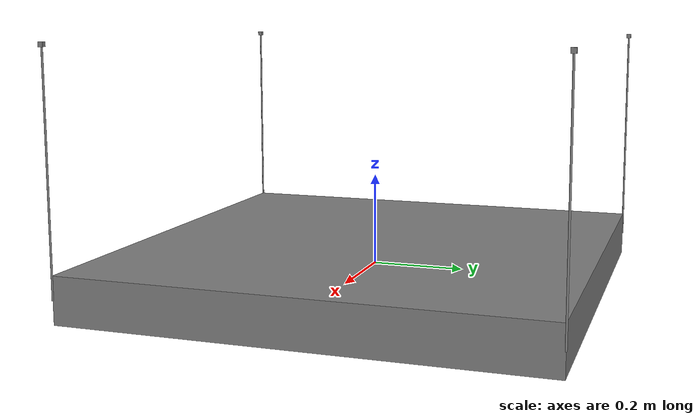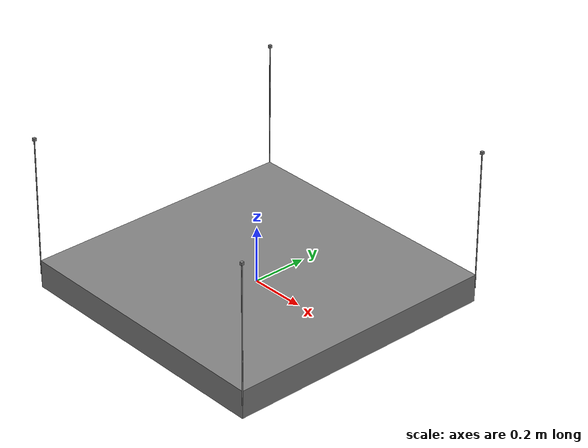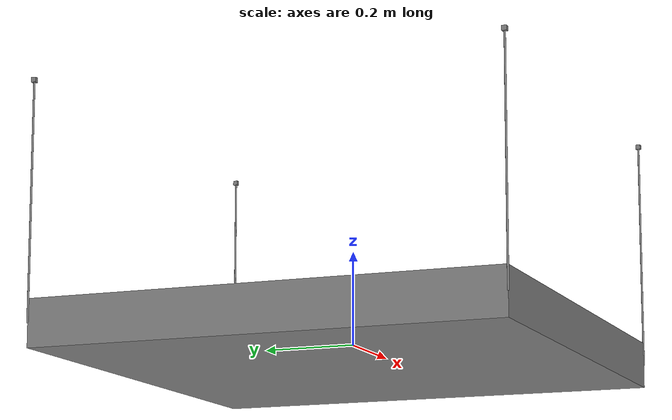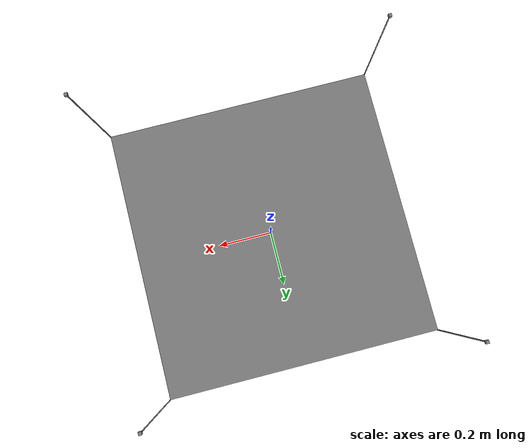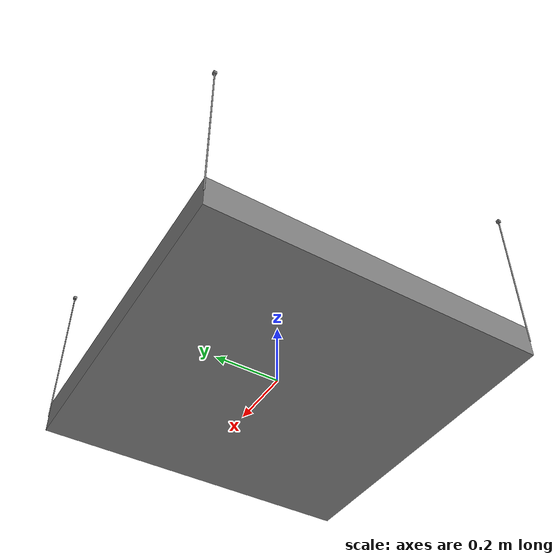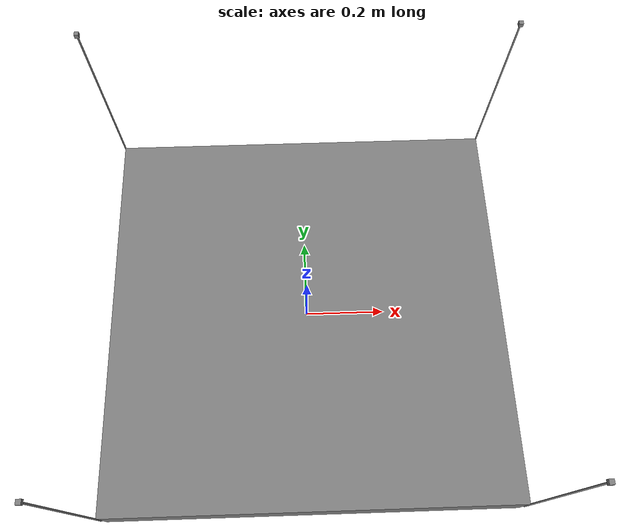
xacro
<?xml version="1.0"?>
<robot name="payload" xmlns:xacro="http://www.ros.org/wiki/xacro">
  <xacro:property name="PI" value="3.14159"/>
  <xacro:property name="effort" value="30"/>
  <xacro:property name="velocity" value="10"/>

  <!-- Define the grey material -->
  <material name="grey">
    <color rgba="0.5 0.5 0.5 1.0"/>
  </material>

  <!-- Base plate -->
  <link name="world_link"/>
  <joint name="dummy_joint" type="fixed">
    <parent link="world_link"/>
    <child link="base_plate"/>
  </joint>
  <link name="base_plate">
    <visual>
      <geometry>
        <box size="1 1 0.1"/>
      </geometry>
      <material name="grey"/>
    </visual>
    <collision>
      <geometry>
        <box size="1 1 0.1"/>
      </geometry>
    </collision>
    <inertial>
      <mass value="0.1"/>
      <origin xyz="0 0 0" rpy="0 0 0"/>
      <inertia ixx="0.1" ixy="0.0" ixz="0.0" iyy="0.1" iyz="0.0" izz="0.1"/>
    </inertial>
  </link>

  <!-- Define the four rods -->
  <xacro:macro name="rod" params="name x y">
    <link name="${name}">
      <visual>
        <geometry>
          <cylinder radius="0.002" length="0.5"/>
        </geometry>
        <origin xyz="0 0 0.25" rpy="0 0 0"/>
        <material name="grey"/>
      </visual>
      <collision>
        <geometry>
          <cylinder radius="0.02" length="0.5"/>
        </geometry>
        <origin xyz="0 0 0.25" rpy="0 0 0"/>
      </collision>
      <inertial>
        <mass value="0.0"/>
        <origin xyz="0 0 0.25" rpy="0 0 0"/>
        <inertia ixx="0.0" ixy="0.0" ixz="0.0" iyy="0.0" iyz="0.0" izz="0.0"/>
      </inertial>
    </link>
    <joint name="${name}_joint" type="fixed">
      <parent link="base_plate"/>
      <child link="${name}"/>
      <origin xyz="${x} ${y} 0" rpy="0 0 0"/>
    </joint>
  </xacro:macro>

  <xacro:rod name="rod1" x="0.5" y="0.5"/>
  <xacro:rod name="rod2" x="-0.5" y="0.5"/>
  <xacro:rod name="rod3" x="-0.5" y="-0.5"/>
  <xacro:rod name="rod4" x="0.5" y="-0.5"/>

  <!-- Floating joints for quadrotors -->

  <link name="dummy1">
    <visual>
      <geometry>
        <box size="0.01 0.01 0.01"/>
      </geometry>
      <material name="grey"/>
    </visual>
    <collision>
      <geometry>
        <box size="0.01 0.01 0.01"/>
      </geometry>
    </collision>
    <inertial>
      <mass value="0.001"/>
      <origin xyz="0 0 0" rpy="0 0 0"/>
      <inertia ixx="0.0" ixy="0.0" ixz="0.0" iyy="0.0" iyz="0.0" izz="0.0"/>
    </inertial>
  </link>
  <link name="dummy2">
    <visual>
      <geometry>
        <box size="0.01 0.01 0.01"/>
      </geometry>
      <material name="grey"/>
    </visual>
    <collision>
      <geometry>
        <box size="0.01 0.01 0.01"/>
      </geometry>
    </collision>
    <inertial>
      <mass value="0.001"/>
      <origin xyz="0 0 0" rpy="0 0 0"/>
      <inertia ixx="0.0" ixy="0.0" ixz="0.0" iyy="0.0" iyz="0.0" izz="0.0"/>
    </inertial>
  </link>
  <joint name="joint1_x" type="revolute">
    <parent link="rod1"/>
    <child link="dummy1"/>
    <origin xyz="0 0 0.5" rpy="0 0 0"/>
    <axis xyz="1 0 0"/>
    <limit lower="-${PI/2}" upper="${PI/2}" effort="${effort}" velocity="${velocity}"/>
  </joint>
  <joint name="joint1_y" type="revolute">
    <parent link="dummy1"/>
    <child link="dummy2"/>
    <origin xyz="0 0 0" rpy="0 0 0"/>
    <axis xyz="0 1 0"/>
    <limit lower="-${PI/2}" upper="${PI/2}" effort="${effort}" velocity="${velocity}"/>
  </joint>

  <link name="dummy3">
    <visual>
      <geometry>
        <box size="0.01 0.01 0.01"/>
      </geometry>
      <material name="grey"/>
    </visual>
    <collision>
      <geometry>
        <box size="0.01 0.01 0.01"/>
      </geometry>
    </collision>
    <inertial>
      <mass value="0.001"/>
      <origin xyz="0 0 0" rpy="0 0 0"/>
      <inertia ixx="0.0" ixy="0.0" ixz="0.0" iyy="0.0" iyz="0.0" izz="0.0"/>
    </inertial>
  </link>
  <link name="dummy4">
    <visual>
      <geometry>
        <box size="0.01 0.01 0.01"/>
      </geometry>
      <material name="grey"/>
    </visual>
    <collision>
      <geometry>
        <box size="0.01 0.01 0.01"/>
      </geometry>
    </collision>
    <inertial>
      <mass value="0.001"/>
      <origin xyz="0 0 0" rpy="0 0 0"/>
      <inertia ixx="0.0" ixy="0.0" ixz="0.0" iyy="0.0" iyz="0.0" izz="0.0"/>
    </inertial>
  </link>
  <joint name="joint2_x" type="revolute">
    <parent link="rod2"/>
    <child link="dummy3"/>
    <origin xyz="0 0 0.5" rpy="0 0 0"/>
    <axis xyz="1 0 0"/>
    <limit lower="-${PI/2}" upper="${PI/2}" effort="${effort}" velocity="${velocity}"/>
  </joint>
  <joint name="joint2_y" type="revolute">
    <parent link="dummy3"/>
    <child link="dummy4"/>
    <origin xyz="0 0 0" rpy="0 0 0"/>
    <axis xyz="0 1 0"/>
    <limit lower="-${PI/2}" upper="${PI/2}" effort="${effort}" velocity="${velocity}"/>
  </joint>

  <link name="dummy5">
    <visual>
      <geometry>
        <box size="0.01 0.01 0.01"/>
      </geometry>
      <material name="grey"/>
    </visual>
    <collision>
      <geometry>
        <box size="0.01 0.01 0.01"/>
      </geometry>
    </collision>
    <inertial>
      <mass value="0.001"/>
      <origin xyz="0 0 0" rpy="0 0 0"/>
      <inertia ixx="0.0" ixy="0.0" ixz="0.0" iyy="0.0" iyz="0.0" izz="0.0"/>
    </inertial>
  </link>
  <link name="dummy6">
    <visual>
      <geometry>
        <box size="0.01 0.01 0.01"/>
      </geometry>
      <material name="grey"/>
    </visual>
    <collision>
      <geometry>
        <box size="0.01 0.01 0.01"/>
      </geometry>
    </collision>
    <inertial>
      <mass value="0.001"/>
      <origin xyz="0 0 0" rpy="0 0 0"/>
      <inertia ixx="0.0" ixy="0.0" ixz="0.0" iyy="0.0" iyz="0.0" izz="0.0"/>
    </inertial>
  </link>
  <joint name="joint3_x" type="revolute">
    <parent link="rod3"/>
    <child link="dummy5"/>
    <origin xyz="0 0 0.5" rpy="0 0 0"/>
    <axis xyz="1 0 0"/>
    <limit lower="-${PI/2}" upper="${PI/2}" effort="${effort}" velocity="${velocity}"/>
  </joint>
  <joint name="joint3_y" type="revolute">
    <parent link="dummy5"/>
    <child link="dummy6"/>
    <origin xyz="0 0 0" rpy="0 0 0"/>
    <axis xyz="0 1 0"/>
    <limit lower="-${PI/2}" upper="${PI/2}" effort="${effort}" velocity="${velocity}"/>
  </joint>

  <link name="dummy7">
    <visual>
      <geometry>
        <box size="0.01 0.01 0.01"/>
      </geometry>
      <material name="grey"/>
    </visual>
    <collision>
      <geometry>
        <box size="0.01 0.01 0.01"/>
      </geometry>
    </collision>
    <inertial>
      <mass value="0.001"/>
      <origin xyz="0 0 0" rpy="0 0 0"/>
      <inertia ixx="0.0" ixy="0.0" ixz="0.0" iyy="0.0" iyz="0.0" izz="0.0"/>
    </inertial>
  </link>
  <link name="dummy8">
    <visual>
      <geometry>
        <box size="0.01 0.01 0.01"/>
      </geometry>
      <material name="grey"/>
    </visual>
    <collision>
      <geometry>
        <box size="0.01 0.01 0.01"/>
      </geometry>
    </collision>
    <inertial>
      <mass value="0.001"/>
      <origin xyz="0 0 0" rpy="0 0 0"/>
      <inertia ixx="0.0" ixy="0.0" ixz="0.0" iyy="0.0" iyz="0.0" izz="0.0"/>
    </inertial>
  </link>
  <joint name="joint4_x" type="revolute">
    <parent link="rod4"/>
    <child link="dummy7"/>
    <origin xyz="0 0 0.5" rpy="0 0 0"/>
    <axis xyz="1 0 0"/>
    <limit lower="-${PI/2}" upper="${PI/2}" effort="${effort}" velocity="${velocity}"/>
  </joint>
  <joint name="joint4_y" type="revolute">
    <parent link="dummy7"/>
    <child link="dummy8"/>
    <origin xyz="0 0 0" rpy="0 0 0"/>
    <axis xyz="0 1 0"/>
    <limit lower="-${PI/2}" upper="${PI/2}" effort="${effort}" velocity="${velocity}"/>
  </joint>

  <gazebo>
    <plugin name="GazeboPlugin" filename="home/gzmtsim/GazeboPlugin/export/lib/libGazeboCoSimPlugin.so">
      <portNumber>14581</portNumber>

    </plugin>
  </gazebo>

</robot>
